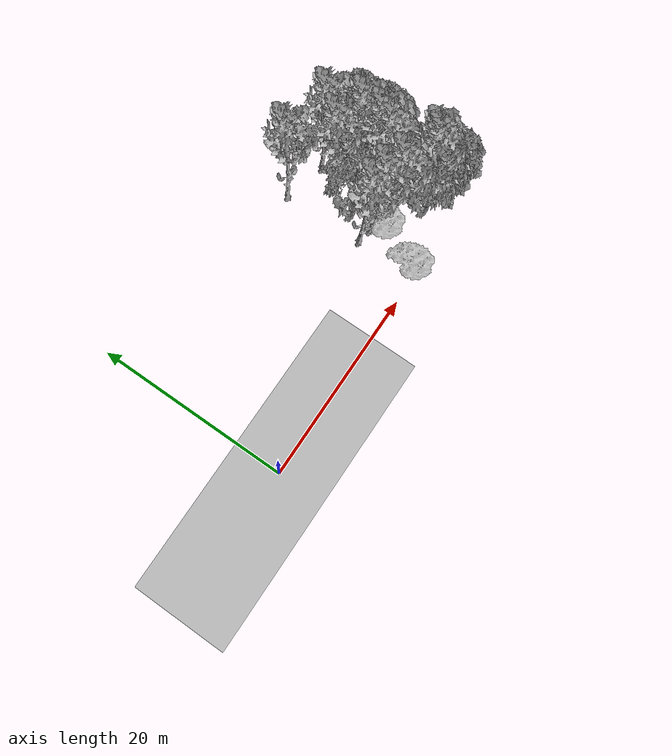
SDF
<sdf version="1.7">
 <world name="default">
  <model name="ground_plane">
   <static>1</static>
   <link name="link">
    <collision name="collision">
     <pose>-50 0 0 0 -0 0</pose>
     <geometry><plane><normal>0 0 1</normal><size>100 100</size></plane></geometry>
     <surface><contact><ode><min_depth>0.01</min_depth><max_vel>0</max_vel></ode></contact></surface>
    </collision>
    <visual name="grass">
     <cast_shadows>0</cast_shadows>
     <geometry>
      <mesh>
       <scale>0.5814285714285714 0.18142857142857144 0.1</scale>
       <uri>file://grass_plane/meshes/grass_plane.dae</uri>
      </mesh>
     </geometry>
    </visual>
   </link>
  </model>
  <model name="Tree 58">
   <static>1</static>
   <pose>27.40537458155478 13.842136844669323 0 1.57079 -0 0</pose>
   <link name="link">
    <collision name="collision">
     <geometry><mesh><scale>3.5 5 3.5</scale><uri>model://tree_9/meshes/tree_9.obj</uri></mesh></geometry>
    </collision>
    <visual name="visual">
     <geometry><mesh><scale>3.5 5 3.5</scale><uri>model://tree_9/meshes/tree_9.obj</uri></mesh></geometry>
    </visual>
   </link>
  </model>
  <model name="Tree 99">
   <static>1</static>
   <pose>30.947944273440584 10.277106238460838 0 1.57079 -0 0</pose>
   <link name="link">
    <collision name="collision">
     <geometry><mesh><scale>3.5 5 3.5</scale><uri>model://tree_2/meshes/tree_2.obj</uri></mesh></geometry>
    </collision>
    <visual name="visual">
     <geometry><mesh><scale>3.5 5 3.5</scale><uri>model://tree_2/meshes/tree_2.obj</uri></mesh></geometry>
    </visual>
   </link>
  </model>
  <model name="Tree 146">
   <static>1</static>
   <pose>28.679242795804967 6.768680516193612 0 1.57079 -0 0</pose>
   <link name="link">
    <collision name="collision">
     <geometry><mesh><scale>3.5 5 3.5</scale><uri>model://tree_2/meshes/tree_2.obj</uri></mesh></geometry>
    </collision>
    <visual name="visual">
     <geometry><mesh><scale>3.5 5 3.5</scale><uri>model://tree_2/meshes/tree_2.obj</uri></mesh></geometry>
    </visual>
   </link>
  </model>
  <model name="Tree 154">
   <static>1</static>
   <pose>22.93863996070489 14.914655937688693 0 1.57079 -0 0</pose>
   <link name="link">
    <collision name="collision">
     <geometry><mesh><scale>3.5 5 3.5</scale><uri>model://tree_9/meshes/tree_9.obj</uri></mesh></geometry>
    </collision>
    <visual name="visual">
     <geometry><mesh><scale>3.5 5 3.5</scale><uri>model://tree_9/meshes/tree_9.obj</uri></mesh></geometry>
    </visual>
   </link>
  </model>
  <model name="Tree 164">
   <static>1</static>
   <pose>25.95384094046281 11.945593123678787 0 1.57079 -0 0</pose>
   <link name="link">
    <collision name="collision">
     <geometry><mesh><scale>3.5 5 3.5</scale><uri>model://tree_9/meshes/tree_9.obj</uri></mesh></geometry>
    </collision>
    <visual name="visual">
     <geometry><mesh><scale>3.5 5 3.5</scale><uri>model://tree_9/meshes/tree_9.obj</uri></mesh></geometry>
    </visual>
   </link>
  </model>
  <model name="Tree 217">
   <static>1</static>
   <pose>29.456840442969863 4.279364484121295 0 1.57079 -0 0</pose>
   <link name="link">
    <collision name="collision">
     <geometry><mesh><scale>3.5 5 3.5</scale><uri>model://tree_9/meshes/tree_9.obj</uri></mesh></geometry>
    </collision>
    <visual name="visual">
     <geometry><mesh><scale>3.5 5 3.5</scale><uri>model://tree_9/meshes/tree_9.obj</uri></mesh></geometry>
    </visual>
   </link>
  </model>
  <model name="Tree 239">
   <static>1</static>
   <pose>28.266008116416785 8.087722914629339 0 1.57079 -0 0</pose>
   <link name="link">
    <collision name="collision">
     <geometry><mesh><scale>3.5 5 3.5</scale><uri>model://tree_9/meshes/tree_9.obj</uri></mesh></geometry>
    </collision>
    <visual name="visual">
     <geometry><mesh><scale>3.5 5 3.5</scale><uri>model://tree_9/meshes/tree_9.obj</uri></mesh></geometry>
    </visual>
   </link>
  </model>
  <model name="Tree 253">
   <static>1</static>
   <pose>29.74944806581584 4.649252268336976 0 1.57079 -0 0</pose>
   <link name="link">
    <collision name="collision">
     <geometry><mesh><scale>3.5 5 3.5</scale><uri>model://tree_9/meshes/tree_9.obj</uri></mesh></geometry>
    </collision>
    <visual name="visual">
     <geometry><mesh><scale>3.5 5 3.5</scale><uri>model://tree_9/meshes/tree_9.obj</uri></mesh></geometry>
    </visual>
   </link>
  </model>
  <model name="Tree 278">
   <static>1</static>
   <pose>26.266447133278206 5.555326431202936 0 1.57079 -0 0</pose>
   <link name="link">
    <collision name="collision">
     <geometry><mesh><scale>3.5 5 3.5</scale><uri>model://tree_9/meshes/tree_9.obj</uri></mesh></geometry>
    </collision>
    <visual name="visual">
     <geometry><mesh><scale>3.5 5 3.5</scale><uri>model://tree_9/meshes/tree_9.obj</uri></mesh></geometry>
    </visual>
   </link>
  </model>
  <model name="Tree 298">
   <static>1</static>
   <pose>24.587429665295247 6.198732618045376 0 1.57079 -0 0</pose>
   <link name="link">
    <collision name="collision">
     <geometry><mesh><scale>3.5 5 3.5</scale><uri>model://tree_9/meshes/tree_9.obj</uri></mesh></geometry>
    </collision>
    <visual name="visual">
     <geometry><mesh><scale>3.5 5 3.5</scale><uri>model://tree_9/meshes/tree_9.obj</uri></mesh></geometry>
    </visual>
   </link>
  </model>
  <model name="Tree 322">
   <static>1</static>
   <pose>23.86183370314511 1.024365211578921 0 1.57079 -0 0</pose>
   <link name="link">
    <collision name="collision">
     <geometry><mesh><scale>4 2.5 4</scale><uri>model://tree_1/meshes/tree_1.obj</uri></mesh></geometry>
    </collision>
    <visual name="visual">
     <geometry><mesh><scale>4 2.5 4</scale><uri>model://tree_1/meshes/tree_1.obj</uri></mesh></geometry>
    </visual>
   </link>
  </model>
  <model name="Tree 332">
   <static>1</static>
   <pose>28.50914448514409 9.158771717469051 0 1.57079 -0 0</pose>
   <link name="link">
    <collision name="collision">
     <geometry><mesh><scale>3.5 5 3.5</scale><uri>model://tree_9/meshes/tree_9.obj</uri></mesh></geometry>
    </collision>
    <visual name="visual">
     <geometry><mesh><scale>3.5 5 3.5</scale><uri>model://tree_9/meshes/tree_9.obj</uri></mesh></geometry>
    </visual>
   </link>
  </model>
  <model name="Tree 342">
   <static>1</static>
   <pose>23.0248202032284 6.431485408560029 0 1.57079 -0 0</pose>
   <link name="link">
    <collision name="collision">
     <geometry><mesh><scale>3.5 5 3.5</scale><uri>model://tree_9/meshes/tree_9.obj</uri></mesh></geometry>
    </collision>
    <visual name="visual">
     <geometry><mesh><scale>3.5 5 3.5</scale><uri>model://tree_9/meshes/tree_9.obj</uri></mesh></geometry>
    </visual>
   </link>
  </model>
  <model name="Tree 356">
   <static>1</static>
   <pose>25.745365082260932 5.599231236241803 0 1.57079 -0 0</pose>
   <link name="link">
    <collision name="collision">
     <geometry><mesh><scale>4 2.5 4</scale><uri>model://tree_1/meshes/tree_1.obj</uri></mesh></geometry>
    </collision>
    <visual name="visual">
     <geometry><mesh><scale>4 2.5 4</scale><uri>model://tree_1/meshes/tree_1.obj</uri></mesh></geometry>
    </visual>
   </link>
  </model>
  <model name="Tree 371">
   <static>1</static>
   <pose>28.56024302510187 10.977313173985063 0 1.57079 -0 0</pose>
   <link name="link">
    <collision name="collision">
     <geometry><mesh><scale>3.5 5 3.5</scale><uri>model://tree_9/meshes/tree_9.obj</uri></mesh></geometry>
    </collision>
    <visual name="visual">
     <geometry><mesh><scale>3.5 5 3.5</scale><uri>model://tree_9/meshes/tree_9.obj</uri></mesh></geometry>
    </visual>
   </link>
  </model>
  <model name="Tree 372">
   <static>1</static>
   <pose>28.620618002937604 6.201141018725263 0 1.57079 -0 0</pose>
   <link name="link">
    <collision name="collision">
     <geometry><mesh><scale>3.5 5 3.5</scale><uri>model://tree_2/meshes/tree_2.obj</uri></mesh></geometry>
    </collision>
    <visual name="visual">
     <geometry><mesh><scale>3.5 5 3.5</scale><uri>model://tree_2/meshes/tree_2.obj</uri></mesh></geometry>
    </visual>
   </link>
  </model>
  <model name="Tree 384">
   <static>1</static>
   <pose>30.563579576492913 12.902802020504446 0 1.57079 -0 0</pose>
   <link name="link">
    <collision name="collision">
     <geometry><mesh><scale>3.5 5 3.5</scale><uri>model://tree_2/meshes/tree_2.obj</uri></mesh></geometry>
    </collision>
    <visual name="visual">
     <geometry><mesh><scale>3.5 5 3.5</scale><uri>model://tree_2/meshes/tree_2.obj</uri></mesh></geometry>
    </visual>
   </link>
  </model>
  <model name="Tree 389">
   <static>1</static>
   <pose>29.4303078823566 3.6985359391775745 0 1.57079 -0 0</pose>
   <link name="link">
    <collision name="collision">
     <geometry><mesh><scale>3.5 5 3.5</scale><uri>model://tree_2/meshes/tree_2.obj</uri></mesh></geometry>
    </collision>
    <visual name="visual">
     <geometry><mesh><scale>3.5 5 3.5</scale><uri>model://tree_2/meshes/tree_2.obj</uri></mesh></geometry>
    </visual>
   </link>
  </model>
  <model name="Tree 413">
   <static>1</static>
   <pose>29.956978666290482 8.738120738738122 0 1.57079 -0 0</pose>
   <link name="link">
    <collision name="collision">
     <geometry><mesh><scale>3 2 3</scale><uri>model://tree_3/meshes/tree_3.obj</uri></mesh></geometry>
    </collision>
    <visual name="visual">
     <geometry><mesh><scale>3 2 3</scale><uri>model://tree_3/meshes/tree_3.obj</uri></mesh></geometry>
    </visual>
   </link>
  </model>
  <model name="Tree 442">
   <static>1</static>
   <pose>31.09790739507406 3.5269236267643116 0 1.57079 -0 0</pose>
   <link name="link">
    <collision name="collision">
     <geometry><mesh><scale>3.5 5 3.5</scale><uri>model://tree_2/meshes/tree_2.obj</uri></mesh></geometry>
    </collision>
    <visual name="visual">
     <geometry><mesh><scale>3.5 5 3.5</scale><uri>model://tree_2/meshes/tree_2.obj</uri></mesh></geometry>
    </visual>
   </link>
  </model>
  <model name="Tree 450">
   <static>1</static>
   <pose>25.393037350837957 8.82005248542334 0 1.57079 -0 0</pose>
   <link name="link">
    <collision name="collision">
     <geometry><mesh><scale>3.5 5 3.5</scale><uri>model://tree_2/meshes/tree_2.obj</uri></mesh></geometry>
    </collision>
    <visual name="visual">
     <geometry><mesh><scale>3.5 5 3.5</scale><uri>model://tree_2/meshes/tree_2.obj</uri></mesh></geometry>
    </visual>
   </link>
  </model>
  <model name="Tree 453">
   <static>1</static>
   <pose>28.198117536138597 10.236391700879047 0 1.57079 -0 0</pose>
   <link name="link">
    <collision name="collision">
     <geometry><mesh><scale>3.5 5 3.5</scale><uri>model://tree_2/meshes/tree_2.obj</uri></mesh></geometry>
    </collision>
    <visual name="visual">
     <geometry><mesh><scale>3.5 5 3.5</scale><uri>model://tree_2/meshes/tree_2.obj</uri></mesh></geometry>
    </visual>
   </link>
  </model>
  <model name="Tree 488">
   <static>1</static>
   <pose>29.167976137751907 10.181033573501239 0 1.57079 -0 0</pose>
   <link name="link">
    <collision name="collision">
     <geometry><mesh><scale>3.5 5 3.5</scale><uri>model://tree_2/meshes/tree_2.obj</uri></mesh></geometry>
    </collision>
    <visual name="visual">
     <geometry><mesh><scale>3.5 5 3.5</scale><uri>model://tree_2/meshes/tree_2.obj</uri></mesh></geometry>
    </visual>
   </link>
  </model>
 </world>
</sdf>
